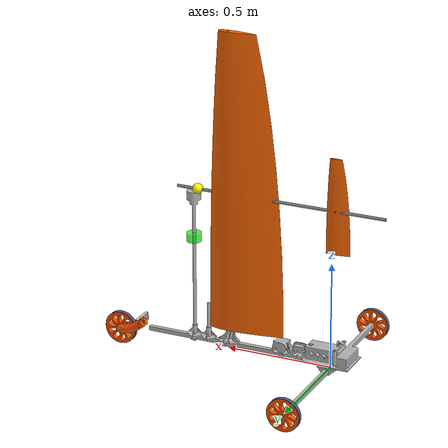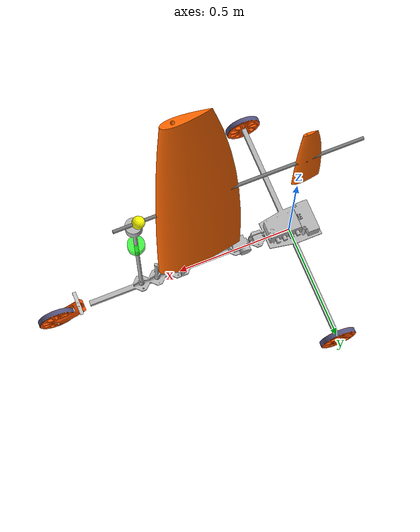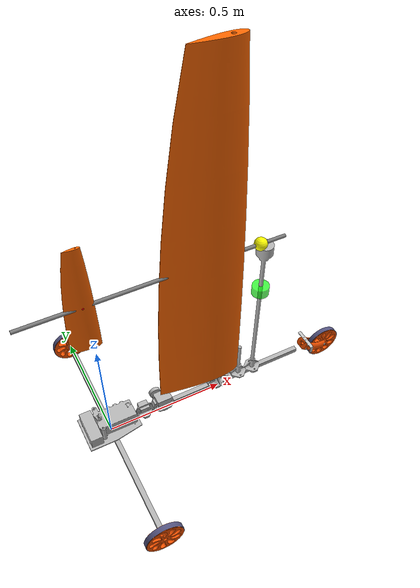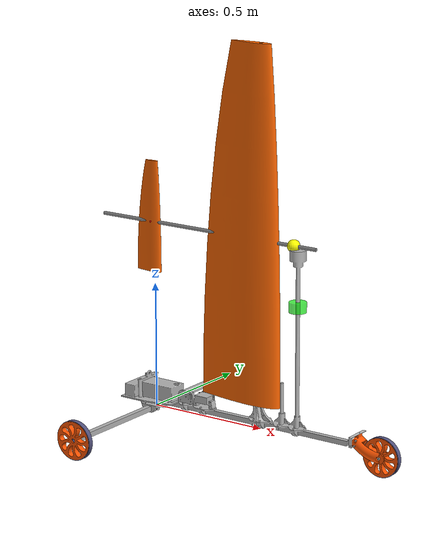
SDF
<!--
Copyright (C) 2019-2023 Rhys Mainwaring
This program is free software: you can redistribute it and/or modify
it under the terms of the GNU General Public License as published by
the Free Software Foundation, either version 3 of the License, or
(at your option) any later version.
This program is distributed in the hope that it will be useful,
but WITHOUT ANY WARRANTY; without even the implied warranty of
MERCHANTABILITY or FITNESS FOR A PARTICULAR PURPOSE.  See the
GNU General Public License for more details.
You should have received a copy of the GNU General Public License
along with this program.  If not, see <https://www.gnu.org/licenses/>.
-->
<?xml version="1.0"?>
<sdf version="1.6">
  <model name="land_yacht_wing_sail_with_elevator">

    <!-- Land yacht base -->
    <include>
      <uri>model://land_yacht_base</uri>
      <name>land_yacht_base</name>
      <pose>0 0 0 0 0 0</pose>
    </include>

    <!-- Wing sail -->
    <include>
      <pose>0.5 0 0.1 0 0 0</pose>
      <uri>model://wing_sail_naca0018_1.4m_with_elevator</uri>
      <name>wing_sail</name>
    </include>

    <joint type="revolute" name="wing_sail_joint">
      <child>wing_sail::wing_sail_link</child>
      <parent>land_yacht_base::base_link</parent>
      <axis>
        <xyz>0 0 1</xyz>
        <dynamics>
          <damping>0.01</damping>
        </dynamics>
        <limit>
          <lower>-1.0E8</lower>
          <upper>1.0E8</upper>
        </limit>
      </axis>
    </joint>

  </model>
</sdf>

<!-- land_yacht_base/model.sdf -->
<sdf version="1.6">
  <model name="land_yacht_base">

    <!-- Base -->
    <link name="base_link">
      <!-- Main beam -->
      <visual name="base">
        <geometry>
          <mesh>
            <uri>model://land_yacht_base/meshes/land_yacht_base.dae</uri>
          </mesh>
        </geometry>
      </visual>

      <!-- Main beam -->
      <collision name="main_beam_collision">
        <pose>0.4 0 0.025 0 0 0</pose>
        <geometry>
          <box>
            <size>1.0 0.020 0.020</size>
          </box>
        </geometry>
      </collision>

      <!-- Cross beam -->
      <collision name="cross_beam_collision">
        <pose>0 0 0 0 0 0</pose>
        <geometry>
          <box>
            <size>0.020 1.0 0.020</size>
          </box>
        </geometry>
      </collision>

      <visual name="imu_visual">
        <pose>0.05 0 0.06 0 0 0</pose>
        <geometry>
          <box>
            <size>0.06 0.04 0.01</size>
          </box>
        </geometry>
        <material>
          <ambient>0.0 1.0 0.0 0.7</ambient>
          <diffuse>0.0 1.0 0.0 0.7</diffuse>
          <specular>0.1 0.1 0.1 0.7</specular>
        </material>
      </visual>

      <sensor name="imu_sensor" type="imu">
        <pose>0.05 0 0.06 3.141593 0 0</pose>
        <always_on>1</always_on>
        <update_rate>1000</update_rate>
        <visualize>1</visualize>
      </sensor>

      <visual name="anemometer_visual">
        <pose>0.67 0 0.5165 0 0 0</pose>
        <geometry>
          <cylinder>
            <radius>0.034</radius>
            <length>0.04</length>
          </cylinder>
        </geometry>
        <material>
          <ambient>0.0 1.0 0.0 0.7</ambient>
          <diffuse>0.0 1.0 0.0 0.7</diffuse>
          <specular>0.1 0.1 0.1 0.7</specular>
        </material>
      </visual>

      <sensor name="anemometer" type="custom" gz:type="anemometer">
        <pose>0.67 0 0.5165 0 0 0</pose>
        <always_on>1</always_on>
        <update_rate>30</update_rate>
        <gz:anemometer>
          <noise type="gaussian">
            <mean>0</mean>
            <stddev>0</stddev>
          </noise>
        </gz:anemometer>
      </sensor>

      <inertial>
        <pose>0.15 0 0.04 0 0 0</pose>
        <mass>3.544</mass>
        <inertia>
          <ixx>0.008623733</ixx>
          <ixy>0</ixy>
          <iyy>0.019521533</iyy>
          <iyz>0</iyz>
          <izz>0.026018867</izz>
        </inertia>
      </inertial>
    </link>

    <!-- Right wheel -->
    <link name="right_wheel_link">
      <pose>0 -0.512 0 1.570796327 0 0</pose>
      <visual name="right_wheel_visual">
        <geometry>
          <mesh>
            <uri>model://land_yacht_base/meshes/sand_wheel.dae</uri>
          </mesh>
        </geometry>
      </visual>
      <collision name="right_wheel_collision">
        <geometry>
          <cylinder>
            <radius>0.0750</radius>
            <length>0.0235</length>
          </cylinder>
        </geometry>
      </collision>
      <inertial>
        <mass>0.112</mass>
        <inertia>
          <ixx>0.000162654</ixx>
          <ixy>0</ixy>
          <iyy>0.000162654</iyy>
          <iyz>0</iyz>
          <izz>0.000315</izz>
        </inertia>
      </inertial>
    </link>

    <joint type="revolute" name="right_wheel_joint">
      <pose>0 0 0 0 0 0</pose>
      <child>right_wheel_link</child>
      <parent>base_link</parent>
      <axis>
        <xyz>0 0 1</xyz>
        <dynamics>
          <damping>0.001</damping>
        </dynamics>
        <limit>
          <lower>-1.0E8</lower>
          <upper>1.0E8</upper>
        </limit>
      </axis>
    </joint>

    <!-- Left wheel -->
    <link name="left_wheel_link">
      <pose>0 0.512 0 1.570796327 0 0</pose>
      <visual name="left_wheel_visual">
        <geometry>
          <mesh>
            <uri>model://land_yacht_base/meshes/sand_wheel.dae</uri>
          </mesh>
        </geometry>
      </visual>
      <collision name="left_wheel_collision">
        <geometry>
          <cylinder>
            <radius>0.0750</radius>
            <length>0.0235</length>
          </cylinder>
        </geometry>
      </collision>
      <inertial>
        <mass>0.112</mass>
        <inertia>
          <ixx>0.000162654</ixx>
          <ixy>0</ixy>
          <iyy>0.000162654</iyy>
          <iyz>0</iyz>
          <izz>0.000315</izz>
        </inertia>
      </inertial>
    </link>

    <joint type="revolute" name="left_wheel_joint">
      <pose>0 0 0 0 0 0</pose>
      <child>left_wheel_link</child>
      <parent>base_link</parent>
      <axis>
        <xyz>0 0 1</xyz>
        <dynamics>
          <damping>0.001</damping>
        </dynamics>
        <limit>
          <lower>-1.0E8</lower>
          <upper>1.0E8</upper>
        </limit>
      </axis>
    </joint>

    <!-- Steering unit -->
    <link name="steering_link">
      <pose>1.05 0 0 0 0 0</pose>

      <visual name="steering_visual">
        <pose>0 0 0 0 0 0</pose>
        <geometry>
          <mesh>
            <uri>model://land_yacht_base/meshes/land_yacht_forks_v4.dae</uri>
          </mesh>
        </geometry>
      </visual>
      <collision name="steering_collision">
        <pose>-0.05 0 0.01 0 0 0</pose>
        <geometry>
          <box>
            <size>0.14 0.05 0.05</size>
          </box>
        </geometry>
      </collision>

      <inertial>
        <pose>-0.05 0 0.01 0 0 0</pose>
        <mass>0.073</mass>
        <inertia>
          <ixx>3.04167E-05</ixx>
          <ixy>0</ixy>
          <iyy>0.000134442</iyy>
          <iyz>0</iyz>
          <izz>0.000134442</izz>
        </inertia>
      </inertial>
    </link>

    <joint type="revolute" name="steering_joint">
      <pose>-0.114 0 0.045 0 0 0</pose>
      <child>steering_link</child>
      <parent>base_link</parent>
      <axis>
        <xyz>-1 0 0.700207538</xyz>
        <dynamics>
          <damping>0.01</damping>
        </dynamics>
        <limit>
          <lower>-0.8</lower>
          <upper>0.8</upper>
        </limit>
      </axis>
    </joint>

    <!-- Front wheel -->
    <link name="front_wheel_link">
      <pose>1.05 0 0 1.570796327 0 0</pose>
      <visual name="front_wheel_visual">
        <geometry>
          <mesh>
            <uri>model://land_yacht_base/meshes/sand_wheel.dae</uri>
          </mesh>
        </geometry>
      </visual>
      <collision name="front_wheel_collision">
        <geometry>
          <cylinder>
            <radius>0.0750</radius>
            <length>0.0235</length>
          </cylinder>
        </geometry>
        <surface>
          <friction>
            <ode>
              <mu>1.0</mu>
              <mu2>1.0</mu2>
              <fdir1>1 0 0</fdir1>
            </ode>
          </friction>
        </surface>
      </collision>
      <inertial>
        <mass>0.112</mass>
        <inertia>
          <ixx>0.000162654</ixx>
          <ixy>0</ixy>
          <iyy>0.000162654</iyy>
          <iyz>0</iyz>
          <izz>0.000315</izz>
        </inertia>
      </inertial>
    </link>

    <joint type="revolute" name="front_wheel_joint">
      <pose>0 0 0 0 0 0</pose>
      <child>front_wheel_link</child>
      <parent>steering_link</parent>
      <axis>
        <xyz>0 0 1</xyz>
        <dynamics>
          <damping>0.01</damping>
        </dynamics>
        <limit>
          <lower>-1.0E8</lower>
          <upper>1.0E8</upper>
        </limit>
      </axis>
      <sensor name="force_torque_sensor" type="force_torque">
        <always_on>true</always_on>
        <update_rate>30</update_rate>
        <visualize>true</visualize>
      </sensor>
    </joint>

    <!-- Thruster -->

  </model>
</sdf>

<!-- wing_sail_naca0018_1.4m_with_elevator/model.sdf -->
<sdf version="1.6">
  <model name="wing_sail_naca0018_1.4m_with_elevator">

    <!-- Plugins -->

    <!--
      Linear approximations to lift / drag coefficient curves for
      NACA 0018 airfoil.
      Foil stalls at approx. 14 degrees (lower in the linear approx.)
    -->
    <plugin name="gz::sim::systems::SailLiftDrag"
        filename="asv_sim2-sail-lift-drag-system">
      <a0>0.0</a0>
      <cla>6.2832</cla>
      <alpha_stall>0.1592</alpha_stall>
      <cla_stall>-0.7083</cla_stall>
      <cda>0.63662</cda>
      <area>0.4858</area>
      <fluid_density>1.2</fluid_density>
      <forward>1 0 0</forward>
      <upward>0 1 0</upward>
      <cp>-0.05 0.0 0.65</cp>
      <link_name>wing_sail_link</link_name>
      <radial_symmetry>true</radial_symmetry>
      <topic>lift_drag</topic>
    </plugin>

    <plugin name="gz::sim::systems::SailLiftDrag"
        filename="asv_sim2-sail-lift-drag-system">
      <a0>0.0</a0>
      <cla>6.2832</cla>
      <alpha_stall>0.1592</alpha_stall>
      <cla_stall>-0.7083</cla_stall>
      <cda>0.63662</cda>
      <area>0.04858</area>
      <fluid_density>1.2</fluid_density>
      <forward>1 0 0</forward>
      <upward>0 1 0</upward>
      <cp>-0.015 0.0 0.2</cp>
      <link_name>wing_sail_elevator_link</link_name>
      <radial_symmetry>true</radial_symmetry>
      <topic>lift_drag</topic>
    </plugin>

    <!-- Wing sail -->
    <link name="wing_sail_link">
      <inertial>
        <pose>-0.05 0.0 0.65 0 0 0</pose>
        <mass>2.0</mass>
        <inertia>
          <ixx>0.326733333</ixx>
          <ixy>0</ixy>
          <iyy>0.348266667</iyy>
          <iyz>0</iyz>
          <izz>0.021666667</izz>
        </inertia>
      </inertial>
      <collision name="wing_sail_collision">
        <pose>-0.09 0 0.7 0 0 0</pose>
        <geometry>
          <box>
            <size>0.35 0.07 1.4</size>
          </box>
        </geometry>
      </collision>
      <visual name="wing_sail_visual">
        <geometry>
          <mesh>
            <uri>model://wing_sail_naca0018_1.4m_with_elevator/meshes/wing_sail.stl</uri>
          </mesh>
        </geometry>
        <material>
          <ambient>1.0 0.4 0.0 0.9</ambient>
          <diffuse>1.0 0.4 0.0 0.9</diffuse>
          <specular>0.1 0.1 0.1 1.0</specular>
        </material>
      </visual>
      <visual name="elevator_spar_visual">
        <pose>-0.25 0 0.65 0 1.570796 0</pose>
        <geometry>
          <cylinder>
            <radius>0.007</radius>
            <length>1.000</length>
          </cylinder>
        </geometry>
        <material>
          <ambient>0.5 0.5 0.5 1.0</ambient>
          <diffuse>0.5 0.5 0.5 1.0</diffuse>
          <specular>0.1 0.1 0.1 1.0</specular>
        </material>
      </visual>
      <visual name="cp_visual">
        <pose>-0.05 0 0.65 0 0 0</pose>
        <geometry>
          <sphere>
            <radius>0.01</radius>
          </sphere>
        </geometry>
        <material>
          <ambient>1.0 0.0 0.0 1.0</ambient>
          <diffuse>1.0 0.0 0.0 1.0</diffuse>
          <specular>0.1 0.1 0.1 1.0</specular>
        </material>
      </visual>
    </link>

    <!-- Wing sail elevator -->
    <link name="wing_sail_elevator_link">
      <pose>-0.5 0 0.45 0 0 0</pose>
      <inertial>
        <pose>-0.015 0.0 0.2 1.570796 1.570796 0</pose>
        <mass>0.0632455</mass>
        <inertia>
          <ixx>6.75281E-05</ixx>
          <ixy>0</ixy>
          <iyy>0.001029888</iyy>
          <iyz>0</iyz>
          <izz>0.001096957</izz>
        </inertia>
      </inertial>
      <collision name="collision">
        <pose>-0.028 0 0.22 0 0 0</pose>
        <geometry>
          <box>
            <size>0.11 0.02 0.44</size>
          </box>
        </geometry>
      </collision>
      <visual name="wing_sail_elevator_visual">
        <geometry>
          <mesh>
            <uri>model://wing_sail_naca0018_1.4m_with_elevator/meshes/wing_sail_elevator.stl</uri>
          </mesh>
        </geometry>
        <material>
          <ambient>1.0 0.4 0.0 0.9</ambient>
          <diffuse>1.0 0.4 0.0 0.9</diffuse>
          <specular>0.1 0.1 0.1 0.9</specular>
        </material>
      </visual>
      <visual name="cp_visual">
        <pose>-0.015 0 0.2 0 0 0</pose>
        <geometry>
          <sphere>
            <radius>0.01</radius>
          </sphere>
        </geometry>
        <material>
          <ambient>1.0 0.0 0.0 1.0</ambient>
          <diffuse>1.0 0.0 0.0 1.0</diffuse>
          <specular>0.1 0.1 0.1 1.0</specular>
        </material>
      </visual>
    </link>

    <joint name="wing_sail_elevator_joint" type="revolute">
      <pose>0 0 0.2 0 0 0</pose>
      <child>wing_sail_elevator_link</child>
      <parent>wing_sail_link</parent>
      <axis>
        <xyz>0 0 1</xyz>
        <dynamics>
          <damping>0.01</damping>
        </dynamics>
        <limit>
          <lower>-1.570796327</lower>
          <upper>1.570796327</upper>
        </limit>
      </axis>
      <sensor name="force_torque_sensor" type="force_torque">
        <always_on>true</always_on>
        <update_rate>30</update_rate>
        <visualize>true</visualize>
      </sensor>
    </joint>

    <!-- Wing sail counterweight -->
    <link name="wing_sail_counterweight_link">
      <pose>0.15 0 0.65 0 0 0</pose>
      <inertial>
        <mass>0.1</mass>
        <inertia>
          <ixx>0.000025</ixx>
          <ixy>0</ixy>
          <iyy>0.000025</iyy>
          <iyz>0</iyz>
          <izz>0.000025</izz>
        </inertia>
      </inertial>
      <collision name="collision">
        <geometry>
          <sphere>
            <radius>0.025</radius>
          </sphere>
        </geometry>
      </collision>
      <visual name="visual">
        <geometry>
          <sphere>
            <radius>0.025</radius>
          </sphere>
        </geometry>
        <material>
          <ambient>1.0 1.0 0.0 1.0</ambient>
          <diffuse>1.0 1.0 0.0 1.0</diffuse>
          <specular>0.1 0.1 0.1 1.0</specular>
        </material>
      </visual>
    </link>

    <joint name="wing_sail_counterweight_joint" type="revolute">
      <child>wing_sail_counterweight_link</child>
      <parent>wing_sail_link</parent>
      <axis>
        <xyz>0 0 1</xyz>
        <dynamics>
          <damping>1.0</damping>
        </dynamics>
        <limit>
          <lower>0</lower>
          <upper>0</upper>
        </limit>
      </axis>
    </joint>

  </model>
</sdf>
